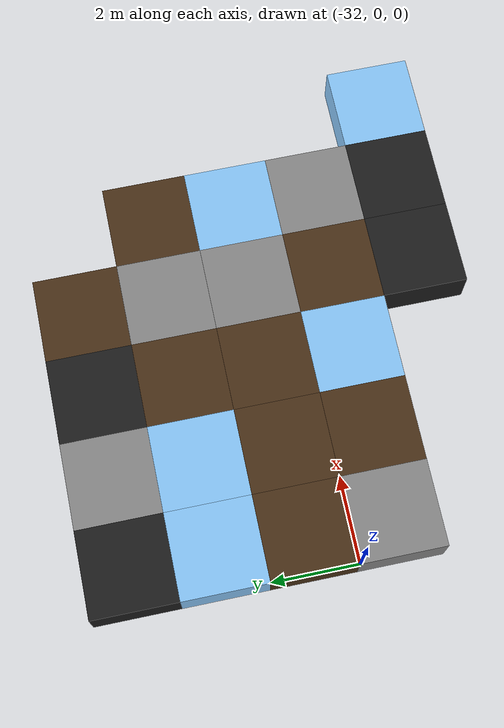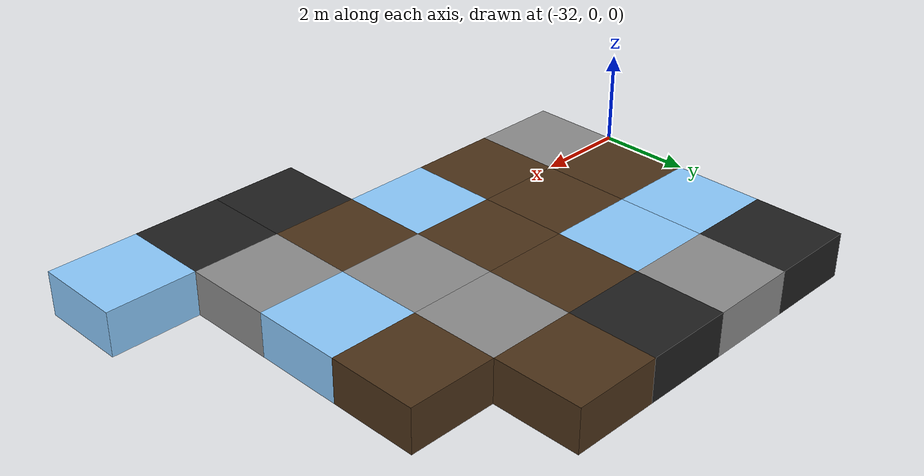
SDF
<sdf version="1.5">
 <world name="squares_example">
  <model name="tile_3_14">
   <static>true</static>
   <pose>-25.000 -3.000 -0.500 0 0 0</pose>
   <link name="link">
    <collision name="col">
     <geometry><box><size>2.0 2.0 1.0</size></box></geometry>
     <surface>
      <friction>
       <ode><mu>0.4</mu><mu2>0.15</mu2><fdir1>1 0 0</fdir1><slip1>0.0</slip1><slip2>0.0</slip2></ode>
       <torsional>
        <coefficient>0.03</coefficient>
        <use_patch_radius>false</use_patch_radius>
        <surface_radius>0.12</surface_radius>
        <ode><slip>0.0</slip></ode>
       </torsional>
      </friction>
      <bounce><restitution_coefficient>0.0</restitution_coefficient><threshold>0.1</threshold></bounce>
      <contact>
       <ode><kp>1000000000.0</kp><kd>1000000.0</kd><max_vel>0.01</max_vel><min_depth>0.0</min_depth></ode>
      </contact>
     </surface>
    </collision>
    <visual name="visual">
     <geometry><box><size>2.0 2.0 1.0</size></box></geometry>
     <material>
      <diffuse>0.12 0.12 0.12 1</diffuse>
      <ambient>0 0 0 0</ambient>
      <specular>0 0 0 1</specular>
      <emissive>0 0 0 1</emissive>
     </material>
    </visual>
   </link>
  </model>
  <model name="tile_4_14">
   <static>true</static>
   <pose>-23.000 -3.000 -0.500 0 0 0</pose>
   <link name="link">
    <collision name="col">
     <geometry><box><size>2.0 2.0 1.0</size></box></geometry>
     <surface>
      <friction>
       <ode><mu>0.4</mu><mu2>0.15</mu2><fdir1>1 0 0</fdir1><slip1>0.0</slip1><slip2>0.0</slip2></ode>
       <torsional>
        <coefficient>0.03</coefficient>
        <use_patch_radius>false</use_patch_radius>
        <surface_radius>0.12</surface_radius>
        <ode><slip>0.0</slip></ode>
       </torsional>
      </friction>
      <bounce><restitution_coefficient>0.0</restitution_coefficient><threshold>0.1</threshold></bounce>
      <contact>
       <ode><kp>1000000000.0</kp><kd>1000000.0</kd><max_vel>0.01</max_vel><min_depth>0.0</min_depth></ode>
      </contact>
     </surface>
    </collision>
    <visual name="visual">
     <geometry><box><size>2.0 2.0 1.0</size></box></geometry>
     <material>
      <diffuse>0.12 0.12 0.12 1</diffuse>
      <ambient>0 0 0 0</ambient>
      <specular>0 0 0 1</specular>
      <emissive>0 0 0 1</emissive>
     </material>
    </visual>
   </link>
  </model>
  <model name="tile_5_14">
   <static>true</static>
   <pose>-21.000 -3.000 -0.500 0 0 0</pose>
   <link name="link">
    <collision name="col">
     <geometry><box><size>2.0 2.0 1.0</size></box></geometry>
     <surface>
      <friction>
       <ode><mu>0.03</mu><mu2>0.02</mu2><fdir1>1 0 0</fdir1><slip1>0.03</slip1><slip2>0.03</slip2></ode>
       <torsional>
        <coefficient>0.005</coefficient>
        <use_patch_radius>false</use_patch_radius>
        <surface_radius>0.12</surface_radius>
        <ode><slip>0.01</slip></ode>
       </torsional>
      </friction>
      <bounce><restitution_coefficient>0.0</restitution_coefficient><threshold>0.1</threshold></bounce>
      <contact>
       <ode><kp>10000000.0</kp><kd>1000.0</kd><max_vel>0.01</max_vel><min_depth>0.0</min_depth></ode>
      </contact>
     </surface>
    </collision>
    <visual name="visual">
     <geometry><box><size>2.0 2.0 1.0</size></box></geometry>
     <material>
      <diffuse>0.55 0.80 1.00 1</diffuse>
      <ambient>0 0 0 0</ambient>
      <specular>0 0 0 1</specular>
      <emissive>0 0 0 1</emissive>
     </material>
    </visual>
   </link>
  </model>
  <model name="tile_0_15">
   <static>true</static>
   <pose>-31.000 -1.000 -0.500 0 0 0</pose>
   <link name="link">
    <collision name="col">
     <geometry><box><size>2.0 2.0 1.0</size></box></geometry>
     <surface>
      <friction>
       <ode><mu>0.8</mu><mu2>0.3</mu2><fdir1>1 0 0</fdir1><slip1>0.0</slip1><slip2>0.0</slip2></ode>
       <torsional>
        <coefficient>0.03</coefficient>
        <use_patch_radius>false</use_patch_radius>
        <surface_radius>0.12</surface_radius>
        <ode><slip>0.0</slip></ode>
       </torsional>
      </friction>
      <bounce><restitution_coefficient>0.0</restitution_coefficient><threshold>0.1</threshold></bounce>
      <contact>
       <ode><kp>10000000000.0</kp><kd>10000000.0</kd><max_vel>0.01</max_vel><min_depth>0.0</min_depth></ode>
      </contact>
     </surface>
    </collision>
    <visual name="visual">
     <geometry><box><size>2.0 2.0 1.0</size></box></geometry>
     <material>
      <diffuse>0.55 0.55 0.55 1</diffuse>
      <ambient>0 0 0 0</ambient>
      <specular>0 0 0 1</specular>
      <emissive>0 0 0 1</emissive>
     </material>
    </visual>
   </link>
  </model>
  <model name="tile_1_15">
   <static>true</static>
   <pose>-29.000 -1.000 -0.500 0 0 0</pose>
   <link name="link">
    <collision name="col">
     <geometry><box><size>2.0 2.0 1.0</size></box></geometry>
     <surface>
      <friction>
       <ode><mu>0.6</mu><mu2>0.4</mu2><fdir1>1 0 0</fdir1><slip1>0.08</slip1><slip2>0.08</slip2></ode>
       <torsional>
        <coefficient>0.03</coefficient>
        <use_patch_radius>false</use_patch_radius>
        <surface_radius>0.12</surface_radius>
        <ode><slip>0.0</slip></ode>
       </torsional>
      </friction>
      <bounce><restitution_coefficient>0.0</restitution_coefficient><threshold>0.1</threshold></bounce>
      <contact>
       <ode><kp>1000000.0</kp><kd>10000.0</kd><max_vel>0.01</max_vel><min_depth>0.0</min_depth></ode>
      </contact>
     </surface>
    </collision>
    <visual name="visual">
     <geometry><box><size>2.0 2.0 1.0</size></box></geometry>
     <material>
      <diffuse>0.30 0.20 0.10 1</diffuse>
      <ambient>0 0 0 0</ambient>
      <specular>0 0 0 1</specular>
      <emissive>0 0 0 1</emissive>
     </material>
    </visual>
   </link>
  </model>
  <model name="tile_2_15">
   <static>true</static>
   <pose>-27.000 -1.000 -0.500 0 0 0</pose>
   <link name="link">
    <collision name="col">
     <geometry><box><size>2.0 2.0 1.0</size></box></geometry>
     <surface>
      <friction>
       <ode><mu>0.03</mu><mu2>0.02</mu2><fdir1>1 0 0</fdir1><slip1>0.03</slip1><slip2>0.03</slip2></ode>
       <torsional>
        <coefficient>0.005</coefficient>
        <use_patch_radius>false</use_patch_radius>
        <surface_radius>0.12</surface_radius>
        <ode><slip>0.01</slip></ode>
       </torsional>
      </friction>
      <bounce><restitution_coefficient>0.0</restitution_coefficient><threshold>0.1</threshold></bounce>
      <contact>
       <ode><kp>10000000.0</kp><kd>1000.0</kd><max_vel>0.01</max_vel><min_depth>0.0</min_depth></ode>
      </contact>
     </surface>
    </collision>
    <visual name="visual">
     <geometry><box><size>2.0 2.0 1.0</size></box></geometry>
     <material>
      <diffuse>0.55 0.80 1.00 1</diffuse>
      <ambient>0 0 0 0</ambient>
      <specular>0 0 0 1</specular>
      <emissive>0 0 0 1</emissive>
     </material>
    </visual>
   </link>
  </model>
  <model name="tile_3_15">
   <static>true</static>
   <pose>-25.000 -1.000 -0.500 0 0 0</pose>
   <link name="link">
    <collision name="col">
     <geometry><box><size>2.0 2.0 1.0</size></box></geometry>
     <surface>
      <friction>
       <ode><mu>0.6</mu><mu2>0.4</mu2><fdir1>1 0 0</fdir1><slip1>0.08</slip1><slip2>0.08</slip2></ode>
       <torsional>
        <coefficient>0.03</coefficient>
        <use_patch_radius>false</use_patch_radius>
        <surface_radius>0.12</surface_radius>
        <ode><slip>0.0</slip></ode>
       </torsional>
      </friction>
      <bounce><restitution_coefficient>0.0</restitution_coefficient><threshold>0.1</threshold></bounce>
      <contact>
       <ode><kp>1000000.0</kp><kd>10000.0</kd><max_vel>0.01</max_vel><min_depth>0.0</min_depth></ode>
      </contact>
     </surface>
    </collision>
    <visual name="visual">
     <geometry><box><size>2.0 2.0 1.0</size></box></geometry>
     <material>
      <diffuse>0.30 0.20 0.10 1</diffuse>
      <ambient>0 0 0 0</ambient>
      <specular>0 0 0 1</specular>
      <emissive>0 0 0 1</emissive>
     </material>
    </visual>
   </link>
  </model>
  <model name="tile_4_15">
   <static>true</static>
   <pose>-23.000 -1.000 -0.500 0 0 0</pose>
   <link name="link">
    <collision name="col">
     <geometry><box><size>2.0 2.0 1.0</size></box></geometry>
     <surface>
      <friction>
       <ode><mu>0.8</mu><mu2>0.3</mu2><fdir1>1 0 0</fdir1><slip1>0.0</slip1><slip2>0.0</slip2></ode>
       <torsional>
        <coefficient>0.03</coefficient>
        <use_patch_radius>false</use_patch_radius>
        <surface_radius>0.12</surface_radius>
        <ode><slip>0.0</slip></ode>
       </torsional>
      </friction>
      <bounce><restitution_coefficient>0.0</restitution_coefficient><threshold>0.1</threshold></bounce>
      <contact>
       <ode><kp>10000000000.0</kp><kd>10000000.0</kd><max_vel>0.01</max_vel><min_depth>0.0</min_depth></ode>
      </contact>
     </surface>
    </collision>
    <visual name="visual">
     <geometry><box><size>2.0 2.0 1.0</size></box></geometry>
     <material>
      <diffuse>0.55 0.55 0.55 1</diffuse>
      <ambient>0 0 0 0</ambient>
      <specular>0 0 0 1</specular>
      <emissive>0 0 0 1</emissive>
     </material>
    </visual>
   </link>
  </model>
  <model name="tile_0_16">
   <static>true</static>
   <pose>-31.000 1.000 -0.500 0 0 0</pose>
   <link name="link">
    <collision name="col">
     <geometry><box><size>2.0 2.0 1.0</size></box></geometry>
     <surface>
      <friction>
       <ode><mu>0.6</mu><mu2>0.4</mu2><fdir1>1 0 0</fdir1><slip1>0.08</slip1><slip2>0.08</slip2></ode>
       <torsional>
        <coefficient>0.03</coefficient>
        <use_patch_radius>false</use_patch_radius>
        <surface_radius>0.12</surface_radius>
        <ode><slip>0.0</slip></ode>
       </torsional>
      </friction>
      <bounce><restitution_coefficient>0.0</restitution_coefficient><threshold>0.1</threshold></bounce>
      <contact>
       <ode><kp>1000000.0</kp><kd>10000.0</kd><max_vel>0.01</max_vel><min_depth>0.0</min_depth></ode>
      </contact>
     </surface>
    </collision>
    <visual name="visual">
     <geometry><box><size>2.0 2.0 1.0</size></box></geometry>
     <material>
      <diffuse>0.30 0.20 0.10 1</diffuse>
      <ambient>0 0 0 0</ambient>
      <specular>0 0 0 1</specular>
      <emissive>0 0 0 1</emissive>
     </material>
    </visual>
   </link>
  </model>
  <model name="tile_1_16">
   <static>true</static>
   <pose>-29.000 1.000 -0.500 0 0 0</pose>
   <link name="link">
    <collision name="col">
     <geometry><box><size>2.0 2.0 1.0</size></box></geometry>
     <surface>
      <friction>
       <ode><mu>0.6</mu><mu2>0.4</mu2><fdir1>1 0 0</fdir1><slip1>0.08</slip1><slip2>0.08</slip2></ode>
       <torsional>
        <coefficient>0.03</coefficient>
        <use_patch_radius>false</use_patch_radius>
        <surface_radius>0.12</surface_radius>
        <ode><slip>0.0</slip></ode>
       </torsional>
      </friction>
      <bounce><restitution_coefficient>0.0</restitution_coefficient><threshold>0.1</threshold></bounce>
      <contact>
       <ode><kp>1000000.0</kp><kd>10000.0</kd><max_vel>0.01</max_vel><min_depth>0.0</min_depth></ode>
      </contact>
     </surface>
    </collision>
    <visual name="visual">
     <geometry><box><size>2.0 2.0 1.0</size></box></geometry>
     <material>
      <diffuse>0.30 0.20 0.10 1</diffuse>
      <ambient>0 0 0 0</ambient>
      <specular>0 0 0 1</specular>
      <emissive>0 0 0 1</emissive>
     </material>
    </visual>
   </link>
  </model>
  <model name="tile_2_16">
   <static>true</static>
   <pose>-27.000 1.000 -0.500 0 0 0</pose>
   <link name="link">
    <collision name="col">
     <geometry><box><size>2.0 2.0 1.0</size></box></geometry>
     <surface>
      <friction>
       <ode><mu>0.6</mu><mu2>0.4</mu2><fdir1>1 0 0</fdir1><slip1>0.08</slip1><slip2>0.08</slip2></ode>
       <torsional>
        <coefficient>0.03</coefficient>
        <use_patch_radius>false</use_patch_radius>
        <surface_radius>0.12</surface_radius>
        <ode><slip>0.0</slip></ode>
       </torsional>
      </friction>
      <bounce><restitution_coefficient>0.0</restitution_coefficient><threshold>0.1</threshold></bounce>
      <contact>
       <ode><kp>1000000.0</kp><kd>10000.0</kd><max_vel>0.01</max_vel><min_depth>0.0</min_depth></ode>
      </contact>
     </surface>
    </collision>
    <visual name="visual">
     <geometry><box><size>2.0 2.0 1.0</size></box></geometry>
     <material>
      <diffuse>0.30 0.20 0.10 1</diffuse>
      <ambient>0 0 0 0</ambient>
      <specular>0 0 0 1</specular>
      <emissive>0 0 0 1</emissive>
     </material>
    </visual>
   </link>
  </model>
  <model name="tile_3_16">
   <static>true</static>
   <pose>-25.000 1.000 -0.500 0 0 0</pose>
   <link name="link">
    <collision name="col">
     <geometry><box><size>2.0 2.0 1.0</size></box></geometry>
     <surface>
      <friction>
       <ode><mu>0.8</mu><mu2>0.3</mu2><fdir1>1 0 0</fdir1><slip1>0.0</slip1><slip2>0.0</slip2></ode>
       <torsional>
        <coefficient>0.03</coefficient>
        <use_patch_radius>false</use_patch_radius>
        <surface_radius>0.12</surface_radius>
        <ode><slip>0.0</slip></ode>
       </torsional>
      </friction>
      <bounce><restitution_coefficient>0.0</restitution_coefficient><threshold>0.1</threshold></bounce>
      <contact>
       <ode><kp>10000000000.0</kp><kd>10000000.0</kd><max_vel>0.01</max_vel><min_depth>0.0</min_depth></ode>
      </contact>
     </surface>
    </collision>
    <visual name="visual">
     <geometry><box><size>2.0 2.0 1.0</size></box></geometry>
     <material>
      <diffuse>0.55 0.55 0.55 1</diffuse>
      <ambient>0 0 0 0</ambient>
      <specular>0 0 0 1</specular>
      <emissive>0 0 0 1</emissive>
     </material>
    </visual>
   </link>
  </model>
  <model name="tile_4_16">
   <static>true</static>
   <pose>-23.000 1.000 -0.500 0 0 0</pose>
   <link name="link">
    <collision name="col">
     <geometry><box><size>2.0 2.0 1.0</size></box></geometry>
     <surface>
      <friction>
       <ode><mu>0.03</mu><mu2>0.02</mu2><fdir1>1 0 0</fdir1><slip1>0.03</slip1><slip2>0.03</slip2></ode>
       <torsional>
        <coefficient>0.005</coefficient>
        <use_patch_radius>false</use_patch_radius>
        <surface_radius>0.12</surface_radius>
        <ode><slip>0.01</slip></ode>
       </torsional>
      </friction>
      <bounce><restitution_coefficient>0.0</restitution_coefficient><threshold>0.1</threshold></bounce>
      <contact>
       <ode><kp>10000000.0</kp><kd>1000.0</kd><max_vel>0.01</max_vel><min_depth>0.0</min_depth></ode>
      </contact>
     </surface>
    </collision>
    <visual name="visual">
     <geometry><box><size>2.0 2.0 1.0</size></box></geometry>
     <material>
      <diffuse>0.55 0.80 1.00 1</diffuse>
      <ambient>0 0 0 0</ambient>
      <specular>0 0 0 1</specular>
      <emissive>0 0 0 1</emissive>
     </material>
    </visual>
   </link>
  </model>
  <model name="tile_0_17">
   <static>true</static>
   <pose>-31.000 3.000 -0.500 0 0 0</pose>
   <link name="link">
    <collision name="col">
     <geometry><box><size>2.0 2.0 1.0</size></box></geometry>
     <surface>
      <friction>
       <ode><mu>0.03</mu><mu2>0.02</mu2><fdir1>1 0 0</fdir1><slip1>0.03</slip1><slip2>0.03</slip2></ode>
       <torsional>
        <coefficient>0.005</coefficient>
        <use_patch_radius>false</use_patch_radius>
        <surface_radius>0.12</surface_radius>
        <ode><slip>0.01</slip></ode>
       </torsional>
      </friction>
      <bounce><restitution_coefficient>0.0</restitution_coefficient><threshold>0.1</threshold></bounce>
      <contact>
       <ode><kp>10000000.0</kp><kd>1000.0</kd><max_vel>0.01</max_vel><min_depth>0.0</min_depth></ode>
      </contact>
     </surface>
    </collision>
    <visual name="visual">
     <geometry><box><size>2.0 2.0 1.0</size></box></geometry>
     <material>
      <diffuse>0.55 0.80 1.00 1</diffuse>
      <ambient>0 0 0 0</ambient>
      <specular>0 0 0 1</specular>
      <emissive>0 0 0 1</emissive>
     </material>
    </visual>
   </link>
  </model>
  <model name="tile_1_17">
   <static>true</static>
   <pose>-29.000 3.000 -0.500 0 0 0</pose>
   <link name="link">
    <collision name="col">
     <geometry><box><size>2.0 2.0 1.0</size></box></geometry>
     <surface>
      <friction>
       <ode><mu>0.03</mu><mu2>0.02</mu2><fdir1>1 0 0</fdir1><slip1>0.03</slip1><slip2>0.03</slip2></ode>
       <torsional>
        <coefficient>0.005</coefficient>
        <use_patch_radius>false</use_patch_radius>
        <surface_radius>0.12</surface_radius>
        <ode><slip>0.01</slip></ode>
       </torsional>
      </friction>
      <bounce><restitution_coefficient>0.0</restitution_coefficient><threshold>0.1</threshold></bounce>
      <contact>
       <ode><kp>10000000.0</kp><kd>1000.0</kd><max_vel>0.01</max_vel><min_depth>0.0</min_depth></ode>
      </contact>
     </surface>
    </collision>
    <visual name="visual">
     <geometry><box><size>2.0 2.0 1.0</size></box></geometry>
     <material>
      <diffuse>0.55 0.80 1.00 1</diffuse>
      <ambient>0 0 0 0</ambient>
      <specular>0 0 0 1</specular>
      <emissive>0 0 0 1</emissive>
     </material>
    </visual>
   </link>
  </model>
  <model name="tile_2_17">
   <static>true</static>
   <pose>-27.000 3.000 -0.500 0 0 0</pose>
   <link name="link">
    <collision name="col">
     <geometry><box><size>2.0 2.0 1.0</size></box></geometry>
     <surface>
      <friction>
       <ode><mu>0.6</mu><mu2>0.4</mu2><fdir1>1 0 0</fdir1><slip1>0.08</slip1><slip2>0.08</slip2></ode>
       <torsional>
        <coefficient>0.03</coefficient>
        <use_patch_radius>false</use_patch_radius>
        <surface_radius>0.12</surface_radius>
        <ode><slip>0.0</slip></ode>
       </torsional>
      </friction>
      <bounce><restitution_coefficient>0.0</restitution_coefficient><threshold>0.1</threshold></bounce>
      <contact>
       <ode><kp>1000000.0</kp><kd>10000.0</kd><max_vel>0.01</max_vel><min_depth>0.0</min_depth></ode>
      </contact>
     </surface>
    </collision>
    <visual name="visual">
     <geometry><box><size>2.0 2.0 1.0</size></box></geometry>
     <material>
      <diffuse>0.30 0.20 0.10 1</diffuse>
      <ambient>0 0 0 0</ambient>
      <specular>0 0 0 1</specular>
      <emissive>0 0 0 1</emissive>
     </material>
    </visual>
   </link>
  </model>
  <model name="tile_3_17">
   <static>true</static>
   <pose>-25.000 3.000 -0.500 0 0 0</pose>
   <link name="link">
    <collision name="col">
     <geometry><box><size>2.0 2.0 1.0</size></box></geometry>
     <surface>
      <friction>
       <ode><mu>0.8</mu><mu2>0.3</mu2><fdir1>1 0 0</fdir1><slip1>0.0</slip1><slip2>0.0</slip2></ode>
       <torsional>
        <coefficient>0.03</coefficient>
        <use_patch_radius>false</use_patch_radius>
        <surface_radius>0.12</surface_radius>
        <ode><slip>0.0</slip></ode>
       </torsional>
      </friction>
      <bounce><restitution_coefficient>0.0</restitution_coefficient><threshold>0.1</threshold></bounce>
      <contact>
       <ode><kp>10000000000.0</kp><kd>10000000.0</kd><max_vel>0.01</max_vel><min_depth>0.0</min_depth></ode>
      </contact>
     </surface>
    </collision>
    <visual name="visual">
     <geometry><box><size>2.0 2.0 1.0</size></box></geometry>
     <material>
      <diffuse>0.55 0.55 0.55 1</diffuse>
      <ambient>0 0 0 0</ambient>
      <specular>0 0 0 1</specular>
      <emissive>0 0 0 1</emissive>
     </material>
    </visual>
   </link>
  </model>
  <model name="tile_4_17">
   <static>true</static>
   <pose>-23.000 3.000 -0.500 0 0 0</pose>
   <link name="link">
    <collision name="col">
     <geometry><box><size>2.0 2.0 1.0</size></box></geometry>
     <surface>
      <friction>
       <ode><mu>0.6</mu><mu2>0.4</mu2><fdir1>1 0 0</fdir1><slip1>0.08</slip1><slip2>0.08</slip2></ode>
       <torsional>
        <coefficient>0.03</coefficient>
        <use_patch_radius>false</use_patch_radius>
        <surface_radius>0.12</surface_radius>
        <ode><slip>0.0</slip></ode>
       </torsional>
      </friction>
      <bounce><restitution_coefficient>0.0</restitution_coefficient><threshold>0.1</threshold></bounce>
      <contact>
       <ode><kp>1000000.0</kp><kd>10000.0</kd><max_vel>0.01</max_vel><min_depth>0.0</min_depth></ode>
      </contact>
     </surface>
    </collision>
    <visual name="visual">
     <geometry><box><size>2.0 2.0 1.0</size></box></geometry>
     <material>
      <diffuse>0.30 0.20 0.10 1</diffuse>
      <ambient>0 0 0 0</ambient>
      <specular>0 0 0 1</specular>
      <emissive>0 0 0 1</emissive>
     </material>
    </visual>
   </link>
  </model>
  <model name="tile_0_18">
   <static>true</static>
   <pose>-31.000 5.000 -0.500 0 0 0</pose>
   <link name="link">
    <collision name="col">
     <geometry><box><size>2.0 2.0 1.0</size></box></geometry>
     <surface>
      <friction>
       <ode><mu>0.4</mu><mu2>0.15</mu2><fdir1>1 0 0</fdir1><slip1>0.0</slip1><slip2>0.0</slip2></ode>
       <torsional>
        <coefficient>0.03</coefficient>
        <use_patch_radius>false</use_patch_radius>
        <surface_radius>0.12</surface_radius>
        <ode><slip>0.0</slip></ode>
       </torsional>
      </friction>
      <bounce><restitution_coefficient>0.0</restitution_coefficient><threshold>0.1</threshold></bounce>
      <contact>
       <ode><kp>1000000000.0</kp><kd>1000000.0</kd><max_vel>0.01</max_vel><min_depth>0.0</min_depth></ode>
      </contact>
     </surface>
    </collision>
    <visual name="visual">
     <geometry><box><size>2.0 2.0 1.0</size></box></geometry>
     <material>
      <diffuse>0.12 0.12 0.12 1</diffuse>
      <ambient>0 0 0 0</ambient>
      <specular>0 0 0 1</specular>
      <emissive>0 0 0 1</emissive>
     </material>
    </visual>
   </link>
  </model>
  <model name="tile_1_18">
   <static>true</static>
   <pose>-29.000 5.000 -0.500 0 0 0</pose>
   <link name="link">
    <collision name="col">
     <geometry><box><size>2.0 2.0 1.0</size></box></geometry>
     <surface>
      <friction>
       <ode><mu>0.8</mu><mu2>0.3</mu2><fdir1>1 0 0</fdir1><slip1>0.0</slip1><slip2>0.0</slip2></ode>
       <torsional>
        <coefficient>0.03</coefficient>
        <use_patch_radius>false</use_patch_radius>
        <surface_radius>0.12</surface_radius>
        <ode><slip>0.0</slip></ode>
       </torsional>
      </friction>
      <bounce><restitution_coefficient>0.0</restitution_coefficient><threshold>0.1</threshold></bounce>
      <contact>
       <ode><kp>10000000000.0</kp><kd>10000000.0</kd><max_vel>0.01</max_vel><min_depth>0.0</min_depth></ode>
      </contact>
     </surface>
    </collision>
    <visual name="visual">
     <geometry><box><size>2.0 2.0 1.0</size></box></geometry>
     <material>
      <diffuse>0.55 0.55 0.55 1</diffuse>
      <ambient>0 0 0 0</ambient>
      <specular>0 0 0 1</specular>
      <emissive>0 0 0 1</emissive>
     </material>
    </visual>
   </link>
  </model>
  <model name="tile_2_18">
   <static>true</static>
   <pose>-27.000 5.000 -0.500 0 0 0</pose>
   <link name="link">
    <collision name="col">
     <geometry><box><size>2.0 2.0 1.0</size></box></geometry>
     <surface>
      <friction>
       <ode><mu>0.4</mu><mu2>0.15</mu2><fdir1>1 0 0</fdir1><slip1>0.0</slip1><slip2>0.0</slip2></ode>
       <torsional>
        <coefficient>0.03</coefficient>
        <use_patch_radius>false</use_patch_radius>
        <surface_radius>0.12</surface_radius>
        <ode><slip>0.0</slip></ode>
       </torsional>
      </friction>
      <bounce><restitution_coefficient>0.0</restitution_coefficient><threshold>0.1</threshold></bounce>
      <contact>
       <ode><kp>1000000000.0</kp><kd>1000000.0</kd><max_vel>0.01</max_vel><min_depth>0.0</min_depth></ode>
      </contact>
     </surface>
    </collision>
    <visual name="visual">
     <geometry><box><size>2.0 2.0 1.0</size></box></geometry>
     <material>
      <diffuse>0.12 0.12 0.12 1</diffuse>
      <ambient>0 0 0 0</ambient>
      <specular>0 0 0 1</specular>
      <emissive>0 0 0 1</emissive>
     </material>
    </visual>
   </link>
  </model>
  <model name="tile_3_18">
   <static>true</static>
   <pose>-25.000 5.000 -0.500 0 0 0</pose>
   <link name="link">
    <collision name="col">
     <geometry><box><size>2.0 2.0 1.0</size></box></geometry>
     <surface>
      <friction>
       <ode><mu>0.6</mu><mu2>0.4</mu2><fdir1>1 0 0</fdir1><slip1>0.08</slip1><slip2>0.08</slip2></ode>
       <torsional>
        <coefficient>0.03</coefficient>
        <use_patch_radius>false</use_patch_radius>
        <surface_radius>0.12</surface_radius>
        <ode><slip>0.0</slip></ode>
       </torsional>
      </friction>
      <bounce><restitution_coefficient>0.0</restitution_coefficient><threshold>0.1</threshold></bounce>
      <contact>
       <ode><kp>1000000.0</kp><kd>10000.0</kd><max_vel>0.01</max_vel><min_depth>0.0</min_depth></ode>
      </contact>
     </surface>
    </collision>
    <visual name="visual">
     <geometry><box><size>2.0 2.0 1.0</size></box></geometry>
     <material>
      <diffuse>0.30 0.20 0.10 1</diffuse>
      <ambient>0 0 0 0</ambient>
      <specular>0 0 0 1</specular>
      <emissive>0 0 0 1</emissive>
     </material>
    </visual>
   </link>
  </model>
 </world>
</sdf>
